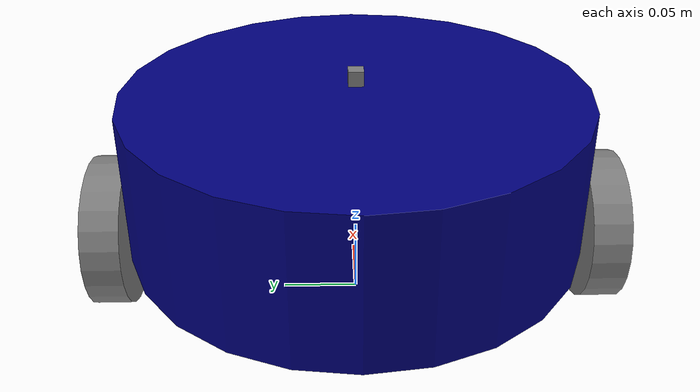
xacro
<?xml version="1.0"?>
<robot name="my_robot" xmlns:xacro="http://www.ros.org/wiki/xacro">

    <xacro:include filename="common_properties.xacro" />
    <xacro:include filename="vacuum_robot_base.xacro"/>
    <xacro:include filename="simple_robot_car_gazebo.urdf.xacro"/>

    <xacro:include filename="lidar.xacro"/>

</robot>

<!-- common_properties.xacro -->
<robot xmlns:xacro="http://www.ros.org/wiki/xacro">

    <material name="green">
        <color rgba="0 0.5 0 1"></color>
    </material>
    <material name="blue">
        <color rgba="0 0 0.5 1"></color>
    </material>
    <material name="grey">
        <color rgba="0.5 0.5 0.5 1"></color>
    </material>

    <xacro:macro name="box_inertia" params="m l w h xyz rpy">
        <inertial>
            <origin xyz="${xyz}" rpy="${rpy}" />
            <mass value="${m}" />
            <inertia    ixx="${(m/12) * (h*h + l*l)}" ixy = "0" ixz="0"
                        iyy="${(m/12) * (w*w + l*l)}" iyz = "0"
                        izz="${(m/12) * (w*w + h*h)}"
            />
        </inertial>
    </xacro:macro>

    <xacro:macro name="cylinder_inertia" params="m r h xyz rpy">
        <inertial>
            <origin xyz="${xyz}" rpy="${rpy}" />
            <mass value="${m}" />
            <inertia    ixx="${(m/12) * (3*r*r + h*h)}" ixy = "0" ixz="0"
                        iyy="${(m/12) * (3*r*r + h*h)}" iyz = "0"
                        izz="${(m/12) * (r*r)}"
            />
        </inertial>
    </xacro:macro>

    <xacro:macro name="sphere_inertia" params="m r xyz rpy">
        <inertial>
            <origin xyz="${xyz}" rpy="${rpy}" />
            <mass value="${m}" />
            <inertia    ixx="${(2/5) * m * r *r}" ixy = "0" ixz="0"
                        iyy="${(2/5) * m * r *r}" iyz = "0"
                        izz="${(2/5) * m * r *r}"
            />
        </inertial>
    </xacro:macro>

</robot>

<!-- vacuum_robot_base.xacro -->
<robot xmlns:xacro="http://www.ros.org/wiki/xacro">

    <xacro:property name="base_length" value="0.3" />
    <xacro:property name="base_height" value="0.1" />
    <xacro:property name="wheel_radius" value="0.05" />
    <xacro:property name="wheel_length" value="0.025" />

    <xacro:macro name="wheel_link" params="prefix">
        <link name="${prefix}_wheel_link">
            <visual>
                <geometry>
                    <cylinder radius="${wheel_radius}" length="${wheel_length}" />
                </geometry>
                <origin xyz="0 0 0" rpy="${pi / 2.0} 0 0" />
                <material name="grey"></material>
            </visual>
            <collision>
                <geometry>
                    <cylinder radius="${wheel_radius}" length="${wheel_length}" />
                </geometry>
                <origin xyz="0 0 0" rpy="${pi / 2.0} 0 0" />
            </collision>
            <xacro:cylinder_inertia m="1.0" r="${2*wheel_radius}" h="${2*wheel_length}" xyz="0 0 0" rpy="${pi / 2.0} 0 0" />
        </link>
    </xacro:macro>

    <link name="base_footprint">
    </link>

    <link name="base_link">
        <visual>
            <geometry>
                <cylinder radius="${base_length / 2.0}" length="${base_height}" />
            </geometry>
            <origin xyz="0 0 ${base_height / 2.0}" rpy="0 0 0"></origin>
            <material name="blue"></material>
        </visual>
        <collision>
            <geometry>
                <cylinder radius="${base_length}" length="${base_height}" />
            </geometry>
            <origin xyz="0 0 ${base_height / 2.0}" rpy="0 0 0"></origin>
        </collision>
        <xacro:cylinder_inertia m="5.0" r="${2*base_length}" h="${2*base_height}" xyz="0 0 0" rpy="0 0 0" />
    </link>

    <xacro:wheel_link prefix="right" />
    <xacro:wheel_link prefix="left" />

    <link name="caster_wheel_link">
        <visual>
            <geometry>
                <sphere radius="${wheel_radius / 2.0}" />
            </geometry>
            <origin xyz="0 0 0" rpy="0 0 0" />
            <material name="grey"></material>
        </visual>
        <collision>
            <geometry>
                <sphere radius="${wheel_radius / 2.0}" />
            </geometry>
            <origin xyz="0 0 0" rpy="0 0 0" />
        </collision>
        <xacro:sphere_inertia   m="0.5" r="${2*wheel_radius / 2.0}"
                                xyz="0 0 0" rpy="0 0 0" />
    </link>

    <joint name="base_footprint_base_joint" type="fixed">
        <parent link="base_footprint" />
        <child link="base_link" />
        <origin xyz="0 0 ${wheel_radius}" rpy="0 0 0" />
    </joint>

    <joint name="base_right_wheel_joint" type="continuous">
        <parent link="base_link" />
        <child link="right_wheel_link" />
        <origin xyz="0 ${-base_length / 2.0 - wheel_length / 2.0} 0" rpy="0 0 0" />
        <axis xyz="0 1 0" />
    </joint>

    <joint name="base_left_wheel_joint" type="continuous">
        <parent link="base_link" />
        <child link="left_wheel_link" />
        <origin xyz="0 ${base_length / 2.0 + wheel_length / 2.0} 0" rpy="0 0 0" />
        <axis xyz="0 1 0" />
    </joint>

    <joint name="base_caster_wheel_joint" type="fixed">
        <parent link="base_link" />
        <child link="caster_wheel_link" />
        <origin xyz="${base_length / 3.0} 0 ${-wheel_radius / 2.0}" rpy="0 0 0" />
    </joint>

</robot>

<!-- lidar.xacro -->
<robot xmlns:xacro="http://www.ros.org/wiki/xacro">

    <xacro:property name="lidar_length" value="0.01"/>
    <xacro:property name="lidar_width" value="0.01"/>
    <xacro:property name="lidar_height" value="0.01"/>

    <link name="lidar_link">
        <visual>
            <geometry>
                <box size="${lidar_length} ${lidar_width} ${lidar_height}"/>
            </geometry>
            <material name="grey"/>
            <origin xyz="0 0 ${lidar_height / 2.0}" rpy="0 0 0"></origin>
        </visual>
        <collision>
            <geometry>
                <box size="${lidar_length} ${lidar_width} ${lidar_height}"/>
            </geometry>
        </collision>
        <xacro:box_inertia m="0.1" l="${lidar_length}" w="${lidar_width}" h="${lidar_height}"
                            xyz="0 0 0" rpy="0 0 0"/>
    </link>

    <joint name="base_lidar_joint" type="fixed">
        <parent link="base_link"/>
        <child link="lidar_link"/>
        <origin xyz="0 0 ${base_height + lidar_height / 2.0}" rpy="0 0 0" />
    </joint>

    <gazebo reference="lidar_link">
        <sensor name="lidar" type="ray">
            <pose>0 0 0 0 0 0</pose>
            <always_on>true</always_on>
            <visualize>true</visualize>
            <update_rate>10</update_rate>
            <ray>
                <scan>
                    <horizontal>
                        <samples>360</samples>
                        <min_angle>-3.14</min_angle>
                        <max_angle>3.14</max_angle>
                    </horizontal>
                </scan>
                <range>
                    <min>0.15</min>
                    <max>6.0</max>
                    <resolution>0.01500</resolution>
		        </range>
                <noise>
                    <type>gaussian</type>
                    <mean>0.0</mean>
                    <stddev>0.01</stddev>
                </noise>
            </ray>
            <plugin name="lidar_controller" filename="libgazebo_ros_ray_sensor.so">
                <ros>
                    <remapping>~/out:=scan</remapping>
                </ros>
                <output_type>sensor_msgs/LaserScan</output_type>
                <frame_name>lidar_link</frame_name>
            </plugin>
        </sensor>
    </gazebo>

</robot>
